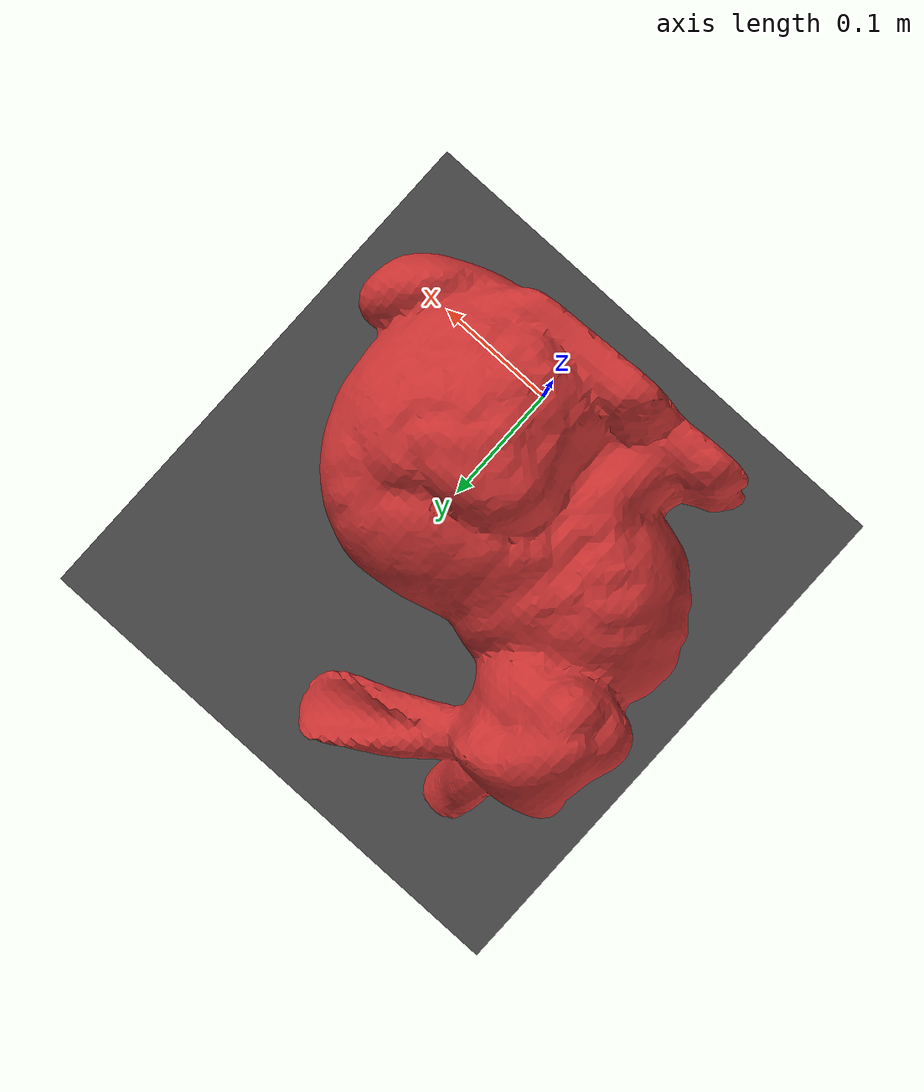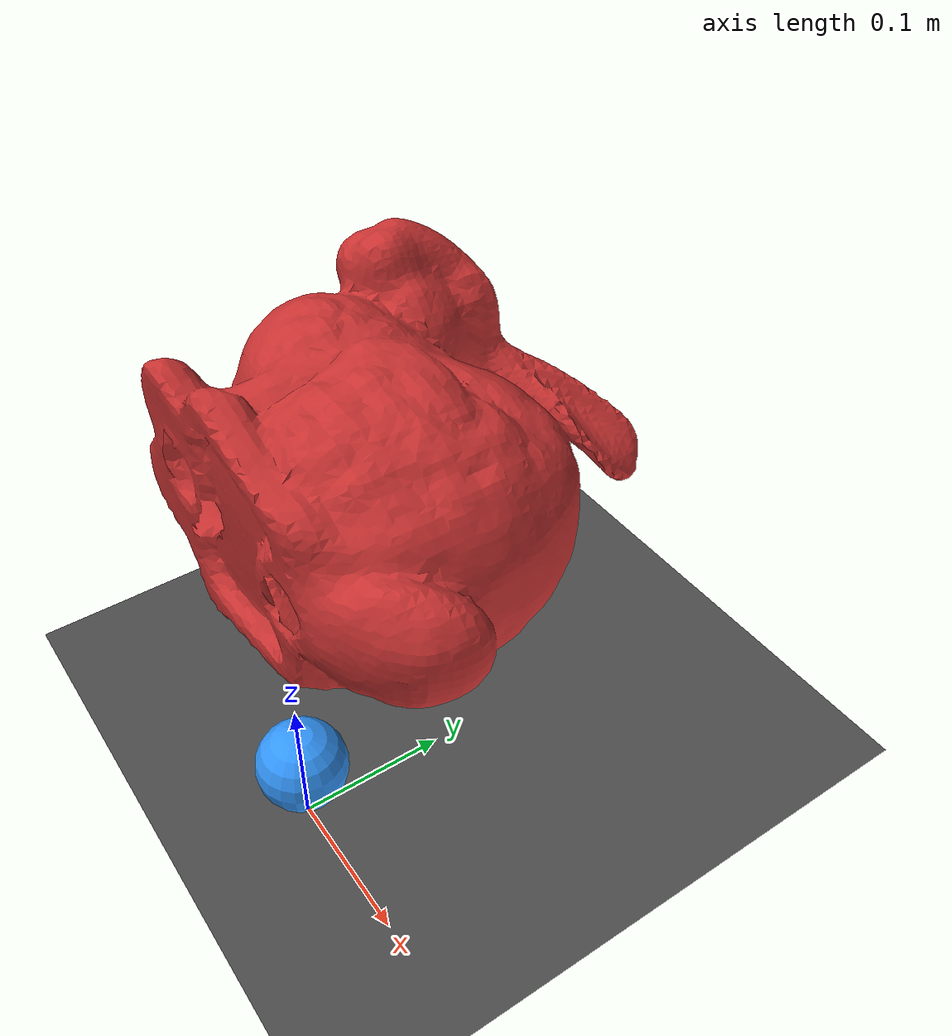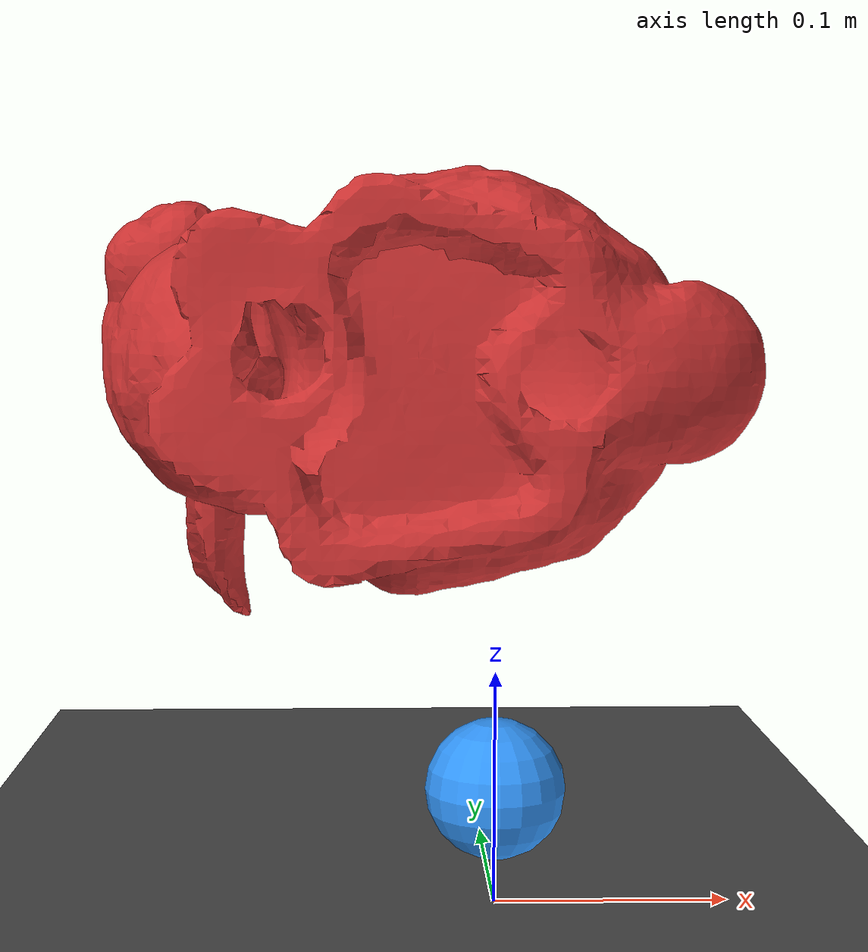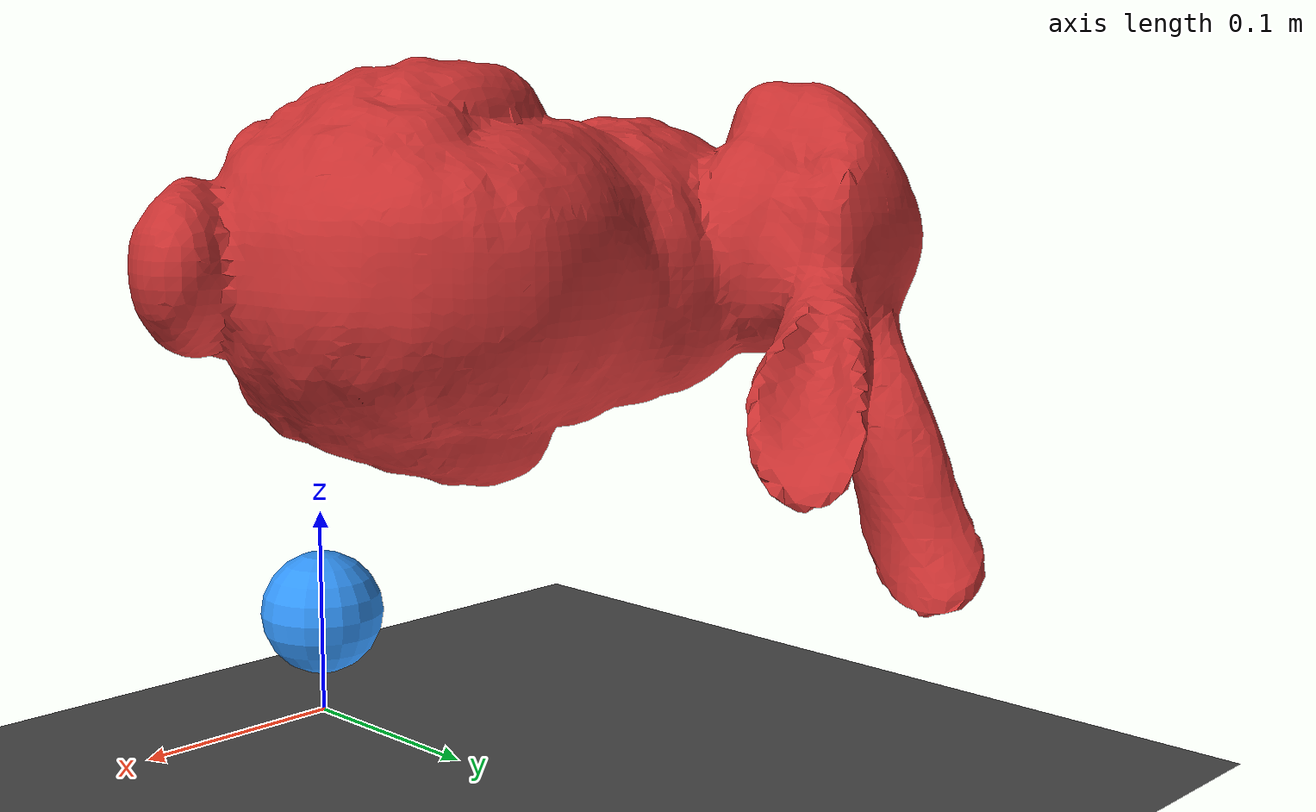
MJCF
<mujoco model="sphere_haptic_bunny_target">
  <compiler meshdir="/home/justinrc/workspace/src/dual_servo_ur3e_sim/mjcf/"/>
  <option timestep="0.002"/>

  <asset>
    <mesh name="bunny_mesh" file="bun_zipper_res2.stl" scale="2 2 2"/>
  </asset>

  <worldbody>
    <light diffuse=".5 .5 .5" pos="0 0 2" dir="0 0 -1"/>
    <geom type="plane" size="2 2 0.1" rgba="0.3 0.3 0.3 1"/>

    <!-- Dynamic Sphere Proxy (Driven by Mocap) -->
    <body name="sphere" pos="0 0 0.05" gravcomp="1">
      <freejoint/>
      <geom name="sphere_geom" type="sphere" size="0.03" mass="0.05" rgba="0.2 0.6 1 1"/>
    </body>

    <!-- Target Obstacle (Replaced Box with Bunny) -->
    <body name="bunny_target" pos="0 -0.08 0.2">
      <geom name="bunny_geom" type="mesh" mesh="bunny_mesh" mass="0.2" rgba="0.8 0.2 0.2 1"/>
    </body>

    <!-- Device Mocap Target -->
    <body name="mocap" mocap="true" pos="0 0 0.05">
      <geom type="sphere" size="0.01" contype="0" conaffinity="0" rgba="1 1 0 0.6"/>
    </body>
  </worldbody>
</mujoco>
